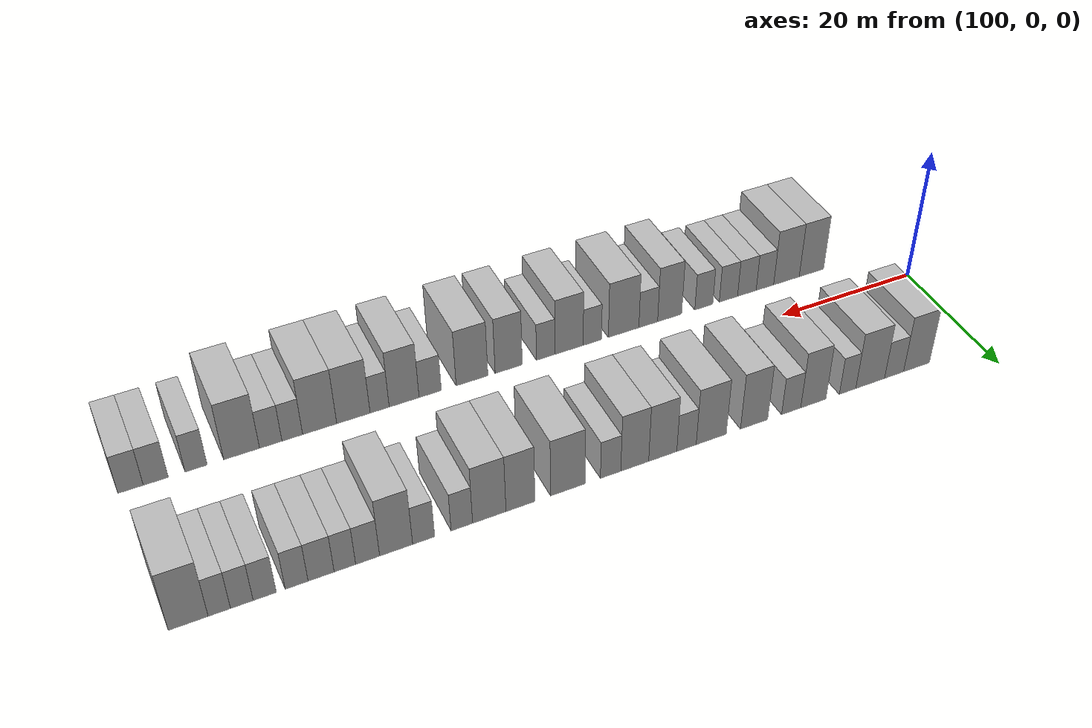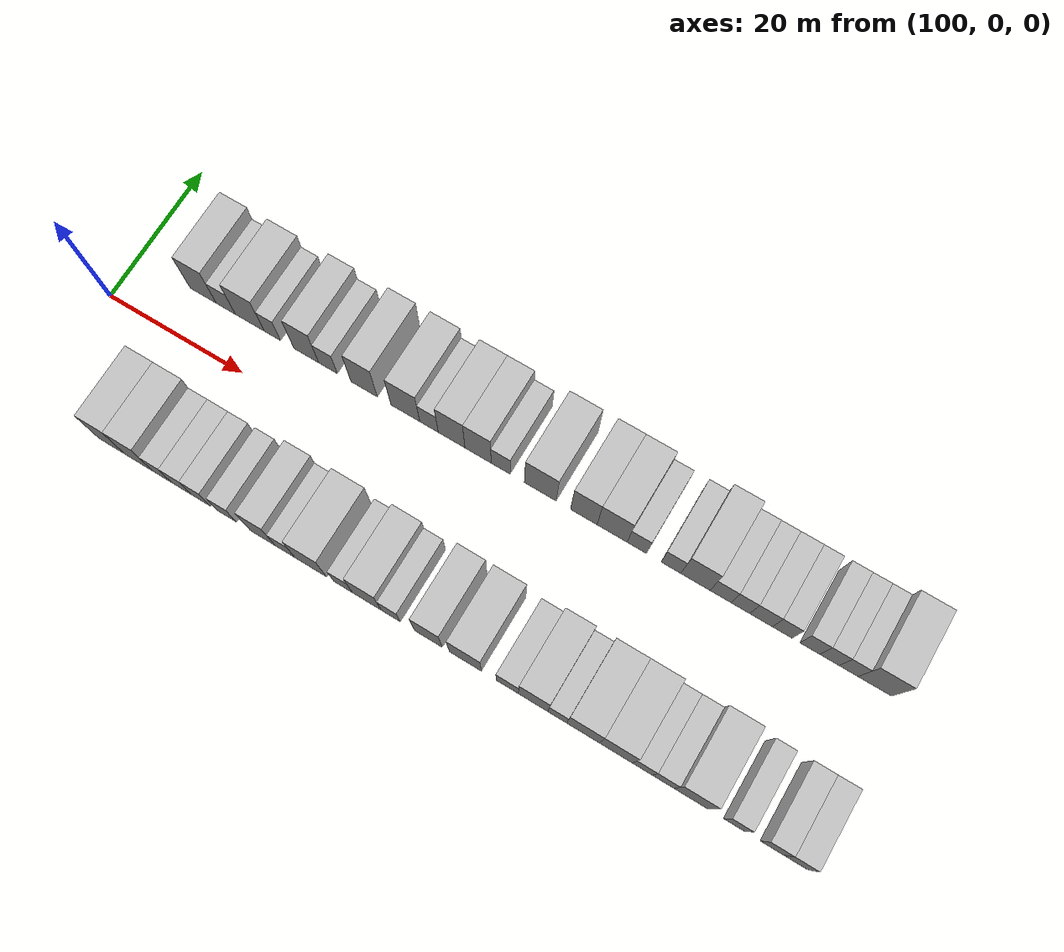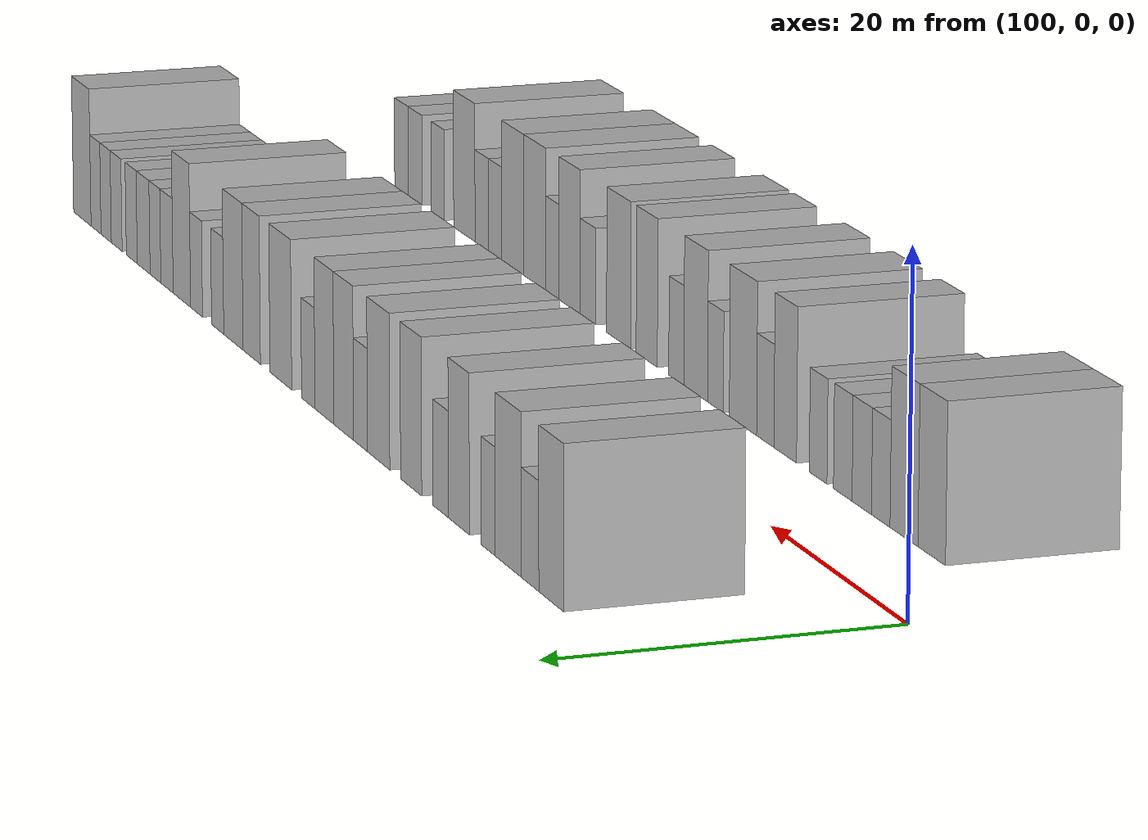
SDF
<sdf version="1.6">
 <world name="default">
  <model name="building_26">
   <static>1</static>
   <pose>109.9729 11.0000 0 0.000000 0.000000 1.570796</pose>
   <link name="link">
    <pose>0 0 4.50 0 0 0</pose>
    <collision name="collision"><geometry><box><size>10.0000 3.9864 9.0000</size></box></geometry></collision>
    <visual name="visual">
     <cast_shadows>0</cast_shadows>
     <geometry><box><size>10.0000 3.9864 9.0000</size></box></geometry>
     <material>
      <script>
       <uri>model://HANNAS_wall/materials/scripts</uri>
       <uri>model://HANNAS_wall/materials/textures</uri>
       <name>vrc/HANNAS_wall</name>
      </script>
     </material>
    </visual>
   </link>
  </model>
  <model name="building_27">
   <static>1</static>
   <pose>113.4090 11.0000 0 0.000000 0.000000 1.570796</pose>
   <link name="link">
    <pose>0 0 3.00 0 0 0</pose>
    <collision name="collision"><geometry><box><size>10.0000 2.8859 6.0000</size></box></geometry></collision>
    <visual name="visual">
     <cast_shadows>0</cast_shadows>
     <geometry><box><size>10.0000 2.8859 6.0000</size></box></geometry>
     <material>
      <script>
       <uri>model://HANNAS_wall/materials/scripts</uri>
       <uri>model://HANNAS_wall/materials/textures</uri>
       <name>vrc/HANNAS_wall</name>
      </script>
     </material>
    </visual>
   </link>
  </model>
  <model name="building_28">
   <static>1</static>
   <pose>117.0233 11.0000 0 0.000000 0.000000 1.570796</pose>
   <link name="link">
    <pose>0 0 4.50 0 0 0</pose>
    <collision name="collision"><geometry><box><size>10.0000 4.3427 9.0000</size></box></geometry></collision>
    <visual name="visual">
     <cast_shadows>0</cast_shadows>
     <geometry><box><size>10.0000 4.3427 9.0000</size></box></geometry>
     <material>
      <script>
       <uri>model://HANNAS_wall/materials/scripts</uri>
       <uri>model://HANNAS_wall/materials/textures</uri>
       <name>vrc/HANNAS_wall</name>
      </script>
     </material>
    </visual>
   </link>
  </model>
  <model name="building_29">
   <static>1</static>
   <pose>120.4155 11.0000 0 0.000000 0.000000 1.570796</pose>
   <link name="link">
    <pose>0 0 3.00 0 0 0</pose>
    <collision name="collision"><geometry><box><size>10.0000 2.4417 6.0000</size></box></geometry></collision>
    <visual name="visual">
     <cast_shadows>0</cast_shadows>
     <geometry><box><size>10.0000 2.4417 6.0000</size></box></geometry>
     <material>
      <script>
       <uri>model://HANNAS_wall/materials/scripts</uri>
       <uri>model://HANNAS_wall/materials/textures</uri>
       <name>vrc/HANNAS_wall</name>
      </script>
     </material>
    </visual>
   </link>
  </model>
  <model name="building_30">
   <static>1</static>
   <pose>125.4740 11.0000 0 0.000000 0.000000 1.570796</pose>
   <link name="link">
    <pose>0 0 4.50 0 0 0</pose>
    <collision name="collision"><geometry><box><size>10.0000 3.6753 9.0000</size></box></geometry></collision>
    <visual name="visual">
     <cast_shadows>0</cast_shadows>
     <geometry><box><size>10.0000 3.6753 9.0000</size></box></geometry>
     <material>
      <script>
       <uri>model://HANNAS_wall/materials/scripts</uri>
       <uri>model://HANNAS_wall/materials/textures</uri>
       <name>vrc/HANNAS_wall</name>
      </script>
     </material>
    </visual>
   </link>
  </model>
  <model name="building_31">
   <static>1</static>
   <pose>128.6920 11.0000 0 0.000000 0.000000 1.570796</pose>
   <link name="link">
    <pose>0 0 3.00 0 0 0</pose>
    <collision name="collision"><geometry><box><size>10.0000 2.7608 6.0000</size></box></geometry></collision>
    <visual name="visual">
     <cast_shadows>0</cast_shadows>
     <geometry><box><size>10.0000 2.7608 6.0000</size></box></geometry>
     <material>
      <script>
       <uri>model://HANNAS_wall/materials/scripts</uri>
       <uri>model://HANNAS_wall/materials/textures</uri>
       <name>vrc/HANNAS_wall</name>
      </script>
     </material>
    </visual>
   </link>
  </model>
  <model name="building_32">
   <static>1</static>
   <pose>133.9978 11.0000 0 0.000000 0.000000 1.570796</pose>
   <link name="link">
    <pose>0 0 4.50 0 0 0</pose>
    <collision name="collision"><geometry><box><size>10.0000 3.8509 9.0000</size></box></geometry></collision>
    <visual name="visual">
     <cast_shadows>0</cast_shadows>
     <geometry><box><size>10.0000 3.8509 9.0000</size></box></geometry>
     <material>
      <script>
       <uri>model://HANNAS_wall/materials/scripts</uri>
       <uri>model://HANNAS_wall/materials/textures</uri>
       <name>vrc/HANNAS_wall</name>
      </script>
     </material>
    </visual>
   </link>
  </model>
  <model name="building_33">
   <static>1</static>
   <pose>140.0102 11.0000 0 0.000000 0.000000 1.570796</pose>
   <link name="link">
    <pose>0 0 4.50 0 0 0</pose>
    <collision name="collision"><geometry><box><size>10.0000 4.1740 9.0000</size></box></geometry></collision>
    <visual name="visual">
     <cast_shadows>0</cast_shadows>
     <geometry><box><size>10.0000 4.1740 9.0000</size></box></geometry>
     <material>
      <script>
       <uri>model://HANNAS_wall/materials/scripts</uri>
       <uri>model://HANNAS_wall/materials/textures</uri>
       <name>vrc/HANNAS_wall</name>
      </script>
     </material>
    </visual>
   </link>
  </model>
  <model name="building_34">
   <static>1</static>
   <pose>143.4238 11.0000 0 0.000000 0.000000 1.570796</pose>
   <link name="link">
    <pose>0 0 3.00 0 0 0</pose>
    <collision name="collision"><geometry><box><size>10.0000 2.6531 6.0000</size></box></geometry></collision>
    <visual name="visual">
     <cast_shadows>0</cast_shadows>
     <geometry><box><size>10.0000 2.6531 6.0000</size></box></geometry>
     <material>
      <script>
       <uri>model://HANNAS_wall/materials/scripts</uri>
       <uri>model://HANNAS_wall/materials/textures</uri>
       <name>vrc/HANNAS_wall</name>
      </script>
     </material>
    </visual>
   </link>
  </model>
  <model name="building_35">
   <static>1</static>
   <pose>146.6559 11.0000 0 0.000000 0.000000 1.570796</pose>
   <link name="link">
    <pose>0 0 4.50 0 0 0</pose>
    <collision name="collision"><geometry><box><size>10.0000 3.8110 9.0000</size></box></geometry></collision>
    <visual name="visual">
     <cast_shadows>0</cast_shadows>
     <geometry><box><size>10.0000 3.8110 9.0000</size></box></geometry>
     <material>
      <script>
       <uri>model://HANNAS_wall/materials/scripts</uri>
       <uri>model://HANNAS_wall/materials/textures</uri>
       <name>vrc/HANNAS_wall</name>
      </script>
     </material>
    </visual>
   </link>
  </model>
  <model name="building_36">
   <static>1</static>
   <pose>150.4263 11.0000 0 0.000000 0.000000 1.570796</pose>
   <link name="link">
    <pose>0 0 4.50 0 0 0</pose>
    <collision name="collision"><geometry><box><size>10.0000 3.7297 9.0000</size></box></geometry></collision>
    <visual name="visual">
     <cast_shadows>0</cast_shadows>
     <geometry><box><size>10.0000 3.7297 9.0000</size></box></geometry>
     <material>
      <script>
       <uri>model://HANNAS_wall/materials/scripts</uri>
       <uri>model://HANNAS_wall/materials/textures</uri>
       <name>vrc/HANNAS_wall</name>
      </script>
     </material>
    </visual>
   </link>
  </model>
  <model name="building_37">
   <static>1</static>
   <pose>153.6339 11.0000 0 0.000000 0.000000 1.570796</pose>
   <link name="link">
    <pose>0 0 3.00 0 0 0</pose>
    <collision name="collision"><geometry><box><size>10.0000 2.6855 6.0000</size></box></geometry></collision>
    <visual name="visual">
     <cast_shadows>0</cast_shadows>
     <geometry><box><size>10.0000 2.6855 6.0000</size></box></geometry>
     <material>
      <script>
       <uri>model://HANNAS_wall/materials/scripts</uri>
       <uri>model://HANNAS_wall/materials/textures</uri>
       <name>vrc/HANNAS_wall</name>
      </script>
     </material>
    </visual>
   </link>
  </model>
  <model name="building_38">
   <static>1</static>
   <pose>159.2055 11.0000 0 0.000000 0.000000 1.570796</pose>
   <link name="link">
    <pose>0 0 4.50 0 0 0</pose>
    <collision name="collision"><geometry><box><size>10.0000 4.4578 9.0000</size></box></geometry></collision>
    <visual name="visual">
     <cast_shadows>0</cast_shadows>
     <geometry><box><size>10.0000 4.4578 9.0000</size></box></geometry>
     <material>
      <script>
       <uri>model://HANNAS_wall/materials/scripts</uri>
       <uri>model://HANNAS_wall/materials/textures</uri>
       <name>vrc/HANNAS_wall</name>
      </script>
     </material>
    </visual>
   </link>
  </model>
  <model name="building_39">
   <static>1</static>
   <pose>165.2655 11.0000 0 0.000000 0.000000 1.570796</pose>
   <link name="link">
    <pose>0 0 4.50 0 0 0</pose>
    <collision name="collision"><geometry><box><size>10.0000 3.6621 9.0000</size></box></geometry></collision>
    <visual name="visual">
     <cast_shadows>0</cast_shadows>
     <geometry><box><size>10.0000 3.6621 9.0000</size></box></geometry>
     <material>
      <script>
       <uri>model://HANNAS_wall/materials/scripts</uri>
       <uri>model://HANNAS_wall/materials/textures</uri>
       <name>vrc/HANNAS_wall</name>
      </script>
     </material>
    </visual>
   </link>
  </model>
  <model name="building_40">
   <static>1</static>
   <pose>169.1713 11.0000 0 0.000000 0.000000 1.570796</pose>
   <link name="link">
    <pose>0 0 4.50 0 0 0</pose>
    <collision name="collision"><geometry><box><size>10.0000 4.1495 9.0000</size></box></geometry></collision>
    <visual name="visual">
     <cast_shadows>0</cast_shadows>
     <geometry><box><size>10.0000 4.1495 9.0000</size></box></geometry>
     <material>
      <script>
       <uri>model://HANNAS_wall/materials/scripts</uri>
       <uri>model://HANNAS_wall/materials/textures</uri>
       <name>vrc/HANNAS_wall</name>
      </script>
     </material>
    </visual>
   </link>
  </model>
  <model name="building_41">
   <static>1</static>
   <pose>172.5689 11.0000 0 0.000000 0.000000 1.570796</pose>
   <link name="link">
    <pose>0 0 3.00 0 0 0</pose>
    <collision name="collision"><geometry><box><size>10.0000 2.6457 6.0000</size></box></geometry></collision>
    <visual name="visual">
     <cast_shadows>0</cast_shadows>
     <geometry><box><size>10.0000 2.6457 6.0000</size></box></geometry>
     <material>
      <script>
       <uri>model://HANNAS_wall/materials/scripts</uri>
       <uri>model://HANNAS_wall/materials/textures</uri>
       <name>vrc/HANNAS_wall</name>
      </script>
     </material>
    </visual>
   </link>
  </model>
  <model name="building_42">
   <static>1</static>
   <pose>177.2182 11.0000 0 0.000000 0.000000 1.570796</pose>
   <link name="link">
    <pose>0 0 3.00 0 0 0</pose>
    <collision name="collision"><geometry><box><size>10.0000 2.6530 6.0000</size></box></geometry></collision>
    <visual name="visual">
     <cast_shadows>0</cast_shadows>
     <geometry><box><size>10.0000 2.6530 6.0000</size></box></geometry>
     <material>
      <script>
       <uri>model://HANNAS_wall/materials/scripts</uri>
       <uri>model://HANNAS_wall/materials/textures</uri>
       <name>vrc/HANNAS_wall</name>
      </script>
     </material>
    </visual>
   </link>
  </model>
  <model name="building_43">
   <static>1</static>
   <pose>180.5146 11.0000 0 0.000000 0.000000 1.570796</pose>
   <link name="link">
    <pose>0 0 4.50 0 0 0</pose>
    <collision name="collision"><geometry><box><size>10.0000 3.9399 9.0000</size></box></geometry></collision>
    <visual name="visual">
     <cast_shadows>0</cast_shadows>
     <geometry><box><size>10.0000 3.9399 9.0000</size></box></geometry>
     <material>
      <script>
       <uri>model://HANNAS_wall/materials/scripts</uri>
       <uri>model://HANNAS_wall/materials/textures</uri>
       <name>vrc/HANNAS_wall</name>
      </script>
     </material>
    </visual>
   </link>
  </model>
  <model name="building_44">
   <static>1</static>
   <pose>183.8940 11.0000 0 0.000000 0.000000 1.570796</pose>
   <link name="link">
    <pose>0 0 3.00 0 0 0</pose>
    <collision name="collision"><geometry><box><size>10.0000 2.8188 6.0000</size></box></geometry></collision>
    <visual name="visual">
     <cast_shadows>0</cast_shadows>
     <geometry><box><size>10.0000 2.8188 6.0000</size></box></geometry>
     <material>
      <script>
       <uri>model://HANNAS_wall/materials/scripts</uri>
       <uri>model://HANNAS_wall/materials/textures</uri>
       <name>vrc/HANNAS_wall</name>
      </script>
     </material>
    </visual>
   </link>
  </model>
  <model name="building_45">
   <static>1</static>
   <pose>186.5556 11.0000 0 0.000000 0.000000 1.570796</pose>
   <link name="link">
    <pose>0 0 3.00 0 0 0</pose>
    <collision name="collision"><geometry><box><size>10.0000 2.5046 6.0000</size></box></geometry></collision>
    <visual name="visual">
     <cast_shadows>0</cast_shadows>
     <geometry><box><size>10.0000 2.5046 6.0000</size></box></geometry>
     <material>
      <script>
       <uri>model://HANNAS_wall/materials/scripts</uri>
       <uri>model://HANNAS_wall/materials/textures</uri>
       <name>vrc/HANNAS_wall</name>
      </script>
     </material>
    </visual>
   </link>
  </model>
  <model name="building_46">
   <static>1</static>
   <pose>189.3068 11.0000 0 0.000000 0.000000 1.570796</pose>
   <link name="link">
    <pose>0 0 3.00 0 0 0</pose>
    <collision name="collision"><geometry><box><size>10.0000 2.9978 6.0000</size></box></geometry></collision>
    <visual name="visual">
     <cast_shadows>0</cast_shadows>
     <geometry><box><size>10.0000 2.9978 6.0000</size></box></geometry>
     <material>
      <script>
       <uri>model://HANNAS_wall/materials/scripts</uri>
       <uri>model://HANNAS_wall/materials/textures</uri>
       <name>vrc/HANNAS_wall</name>
      </script>
     </material>
    </visual>
   </link>
  </model>
  <model name="building_47">
   <static>1</static>
   <pose>192.1091 11.0000 0 0.000000 0.000000 1.570796</pose>
   <link name="link">
    <pose>0 0 3.00 0 0 0</pose>
    <collision name="collision"><geometry><box><size>10.0000 2.6069 6.0000</size></box></geometry></collision>
    <visual name="visual">
     <cast_shadows>0</cast_shadows>
     <geometry><box><size>10.0000 2.6069 6.0000</size></box></geometry>
     <material>
      <script>
       <uri>model://HANNAS_wall/materials/scripts</uri>
       <uri>model://HANNAS_wall/materials/textures</uri>
       <name>vrc/HANNAS_wall</name>
      </script>
     </material>
    </visual>
   </link>
  </model>
  <model name="building_48">
   <static>1</static>
   <pose>195.7124 11.0000 0 0.000000 0.000000 1.570796</pose>
   <link name="link">
    <pose>0 0 3.00 0 0 0</pose>
    <collision name="collision"><geometry><box><size>10.0000 2.5996 6.0000</size></box></geometry></collision>
    <visual name="visual">
     <cast_shadows>0</cast_shadows>
     <geometry><box><size>10.0000 2.5996 6.0000</size></box></geometry>
     <material>
      <script>
       <uri>model://HANNAS_wall/materials/scripts</uri>
       <uri>model://HANNAS_wall/materials/textures</uri>
       <name>vrc/HANNAS_wall</name>
      </script>
     </material>
    </visual>
   </link>
  </model>
  <model name="building_49">
   <static>1</static>
   <pose>198.2674 11.0000 0 0.000000 0.000000 1.570796</pose>
   <link name="link">
    <pose>0 0 3.00 0 0 0</pose>
    <collision name="collision"><geometry><box><size>10.0000 2.5105 6.0000</size></box></geometry></collision>
    <visual name="visual">
     <cast_shadows>0</cast_shadows>
     <geometry><box><size>10.0000 2.5105 6.0000</size></box></geometry>
     <material>
      <script>
       <uri>model://HANNAS_wall/materials/scripts</uri>
       <uri>model://HANNAS_wall/materials/textures</uri>
       <name>vrc/HANNAS_wall</name>
      </script>
     </material>
    </visual>
   </link>
  </model>
  <model name="building_50">
   <static>1</static>
   <pose>200.7546 11.0000 0 0.000000 0.000000 1.570796</pose>
   <link name="link">
    <pose>0 0 3.00 0 0 0</pose>
    <collision name="collision"><geometry><box><size>10.0000 2.4640 6.0000</size></box></geometry></collision>
    <visual name="visual">
     <cast_shadows>0</cast_shadows>
     <geometry><box><size>10.0000 2.4640 6.0000</size></box></geometry>
     <material>
      <script>
       <uri>model://HANNAS_wall/materials/scripts</uri>
       <uri>model://HANNAS_wall/materials/textures</uri>
       <name>vrc/HANNAS_wall</name>
      </script>
     </material>
    </visual>
   </link>
  </model>
  <model name="building_51">
   <static>1</static>
   <pose>204.1535 11.0000 0 0.000000 0.000000 1.570796</pose>
   <link name="link">
    <pose>0 0 4.50 0 0 0</pose>
    <collision name="collision"><geometry><box><size>10.0000 4.3336 9.0000</size></box></geometry></collision>
    <visual name="visual">
     <cast_shadows>0</cast_shadows>
     <geometry><box><size>10.0000 4.3336 9.0000</size></box></geometry>
     <material>
      <script>
       <uri>model://HANNAS_wall/materials/scripts</uri>
       <uri>model://HANNAS_wall/materials/textures</uri>
       <name>vrc/HANNAS_wall</name>
      </script>
     </material>
    </visual>
   </link>
  </model>
  <model name="building_77">
   <static>1</static>
   <pose>111.7454 -11.0000 0 0.000000 0.000000 1.570796</pose>
   <link name="link">
    <pose>0 0 4.50 0 0 0</pose>
    <collision name="collision"><geometry><box><size>10.0000 3.9332 9.0000</size></box></geometry></collision>
    <visual name="visual">
     <cast_shadows>0</cast_shadows>
     <geometry><box><size>10.0000 3.9332 9.0000</size></box></geometry>
     <material>
      <script>
       <uri>model://HANNAS_wall/materials/scripts</uri>
       <uri>model://HANNAS_wall/materials/textures</uri>
       <name>vrc/HANNAS_wall</name>
      </script>
     </material>
    </visual>
   </link>
  </model>
  <model name="building_78">
   <static>1</static>
   <pose>115.7536 -11.0000 0 0.000000 0.000000 1.570796</pose>
   <link name="link">
    <pose>0 0 4.50 0 0 0</pose>
    <collision name="collision"><geometry><box><size>10.0000 4.0831 9.0000</size></box></geometry></collision>
    <visual name="visual">
     <cast_shadows>0</cast_shadows>
     <geometry><box><size>10.0000 4.0831 9.0000</size></box></geometry>
     <material>
      <script>
       <uri>model://HANNAS_wall/materials/scripts</uri>
       <uri>model://HANNAS_wall/materials/textures</uri>
       <name>vrc/HANNAS_wall</name>
      </script>
     </material>
    </visual>
   </link>
  </model>
  <model name="building_79">
   <static>1</static>
   <pose>119.1729 -11.0000 0 0.000000 0.000000 1.570796</pose>
   <link name="link">
    <pose>0 0 3.00 0 0 0</pose>
    <collision name="collision"><geometry><box><size>10.0000 2.7557 6.0000</size></box></geometry></collision>
    <visual name="visual">
     <cast_shadows>0</cast_shadows>
     <geometry><box><size>10.0000 2.7557 6.0000</size></box></geometry>
     <material>
      <script>
       <uri>model://HANNAS_wall/materials/scripts</uri>
       <uri>model://HANNAS_wall/materials/textures</uri>
       <name>vrc/HANNAS_wall</name>
      </script>
     </material>
    </visual>
   </link>
  </model>
  <model name="building_80">
   <static>1</static>
   <pose>122.0045 -11.0000 0 0.000000 0.000000 1.570796</pose>
   <link name="link">
    <pose>0 0 3.00 0 0 0</pose>
    <collision name="collision"><geometry><box><size>10.0000 2.9076 6.0000</size></box></geometry></collision>
    <visual name="visual">
     <cast_shadows>0</cast_shadows>
     <geometry><box><size>10.0000 2.9076 6.0000</size></box></geometry>
     <material>
      <script>
       <uri>model://HANNAS_wall/materials/scripts</uri>
       <uri>model://HANNAS_wall/materials/textures</uri>
       <name>vrc/HANNAS_wall</name>
      </script>
     </material>
    </visual>
   </link>
  </model>
  <model name="building_81">
   <static>1</static>
   <pose>124.8763 -11.0000 0 0.000000 0.000000 1.570796</pose>
   <link name="link">
    <pose>0 0 3.00 0 0 0</pose>
    <collision name="collision"><geometry><box><size>10.0000 2.8359 6.0000</size></box></geometry></collision>
    <visual name="visual">
     <cast_shadows>0</cast_shadows>
     <geometry><box><size>10.0000 2.8359 6.0000</size></box></geometry>
     <material>
      <script>
       <uri>model://HANNAS_wall/materials/scripts</uri>
       <uri>model://HANNAS_wall/materials/textures</uri>
       <name>vrc/HANNAS_wall</name>
      </script>
     </material>
    </visual>
   </link>
  </model>
  <model name="building_82">
   <static>1</static>
   <pose>128.6681 -11.0000 0 0.000000 0.000000 1.570796</pose>
   <link name="link">
    <pose>0 0 3.00 0 0 0</pose>
    <collision name="collision"><geometry><box><size>10.0000 2.7479 6.0000</size></box></geometry></collision>
    <visual name="visual">
     <cast_shadows>0</cast_shadows>
     <geometry><box><size>10.0000 2.7479 6.0000</size></box></geometry>
     <material>
      <script>
       <uri>model://HANNAS_wall/materials/scripts</uri>
       <uri>model://HANNAS_wall/materials/textures</uri>
       <name>vrc/HANNAS_wall</name>
      </script>
     </material>
    </visual>
   </link>
  </model>
  <model name="building_83">
   <static>1</static>
   <pose>133.8481 -11.0000 0 0.000000 0.000000 1.570796</pose>
   <link name="link">
    <pose>0 0 4.50 0 0 0</pose>
    <collision name="collision"><geometry><box><size>10.0000 3.6120 9.0000</size></box></geometry></collision>
    <visual name="visual">
     <cast_shadows>0</cast_shadows>
     <geometry><box><size>10.0000 3.6120 9.0000</size></box></geometry>
     <material>
      <script>
       <uri>model://HANNAS_wall/materials/scripts</uri>
       <uri>model://HANNAS_wall/materials/textures</uri>
       <name>vrc/HANNAS_wall</name>
      </script>
     </material>
    </visual>
   </link>
  </model>
  <model name="building_84">
   <static>1</static>
   <pose>137.0500 -11.0000 0 0.000000 0.000000 1.570796</pose>
   <link name="link">
    <pose>0 0 3.00 0 0 0</pose>
    <collision name="collision"><geometry><box><size>10.0000 2.7918 6.0000</size></box></geometry></collision>
    <visual name="visual">
     <cast_shadows>0</cast_shadows>
     <geometry><box><size>10.0000 2.7918 6.0000</size></box></geometry>
     <material>
      <script>
       <uri>model://HANNAS_wall/materials/scripts</uri>
       <uri>model://HANNAS_wall/materials/textures</uri>
       <name>vrc/HANNAS_wall</name>
      </script>
     </material>
    </visual>
   </link>
  </model>
  <model name="building_85">
   <static>1</static>
   <pose>140.6866 -11.0000 0 0.000000 0.000000 1.570796</pose>
   <link name="link">
    <pose>0 0 4.50 0 0 0</pose>
    <collision name="collision"><geometry><box><size>10.0000 4.4813 9.0000</size></box></geometry></collision>
    <visual name="visual">
     <cast_shadows>0</cast_shadows>
     <geometry><box><size>10.0000 4.4813 9.0000</size></box></geometry>
     <material>
      <script>
       <uri>model://HANNAS_wall/materials/scripts</uri>
       <uri>model://HANNAS_wall/materials/textures</uri>
       <name>vrc/HANNAS_wall</name>
      </script>
     </material>
    </visual>
   </link>
  </model>
  <model name="building_86">
   <static>1</static>
   <pose>145.2495 -11.0000 0 0.000000 0.000000 1.570796</pose>
   <link name="link">
    <pose>0 0 3.00 0 0 0</pose>
    <collision name="collision"><geometry><box><size>10.0000 2.6444 6.0000</size></box></geometry></collision>
    <visual name="visual">
     <cast_shadows>0</cast_shadows>
     <geometry><box><size>10.0000 2.6444 6.0000</size></box></geometry>
     <material>
      <script>
       <uri>model://HANNAS_wall/materials/scripts</uri>
       <uri>model://HANNAS_wall/materials/textures</uri>
       <name>vrc/HANNAS_wall</name>
      </script>
     </material>
    </visual>
   </link>
  </model>
  <model name="building_87">
   <static>1</static>
   <pose>148.5926 -11.0000 0 0.000000 0.000000 1.570796</pose>
   <link name="link">
    <pose>0 0 4.50 0 0 0</pose>
    <collision name="collision"><geometry><box><size>10.0000 4.0419 9.0000</size></box></geometry></collision>
    <visual name="visual">
     <cast_shadows>0</cast_shadows>
     <geometry><box><size>10.0000 4.0419 9.0000</size></box></geometry>
     <material>
      <script>
       <uri>model://HANNAS_wall/materials/scripts</uri>
       <uri>model://HANNAS_wall/materials/textures</uri>
       <name>vrc/HANNAS_wall</name>
      </script>
     </material>
    </visual>
   </link>
  </model>
  <model name="building_88">
   <static>1</static>
   <pose>151.9230 -11.0000 0 0.000000 0.000000 1.570796</pose>
   <link name="link">
    <pose>0 0 3.00 0 0 0</pose>
    <collision name="collision"><geometry><box><size>10.0000 2.6189 6.0000</size></box></geometry></collision>
    <visual name="visual">
     <cast_shadows>0</cast_shadows>
     <geometry><box><size>10.0000 2.6189 6.0000</size></box></geometry>
     <material>
      <script>
       <uri>model://HANNAS_wall/materials/scripts</uri>
       <uri>model://HANNAS_wall/materials/textures</uri>
       <name>vrc/HANNAS_wall</name>
      </script>
     </material>
    </visual>
   </link>
  </model>
  <model name="building_89">
   <static>1</static>
   <pose>157.1160 -11.0000 0 0.000000 0.000000 1.570796</pose>
   <link name="link">
    <pose>0 0 4.50 0 0 0</pose>
    <collision name="collision"><geometry><box><size>10.0000 3.7672 9.0000</size></box></geometry></collision>
    <visual name="visual">
     <cast_shadows>0</cast_shadows>
     <geometry><box><size>10.0000 3.7672 9.0000</size></box></geometry>
     <material>
      <script>
       <uri>model://HANNAS_wall/materials/scripts</uri>
       <uri>model://HANNAS_wall/materials/textures</uri>
       <name>vrc/HANNAS_wall</name>
      </script>
     </material>
    </visual>
   </link>
  </model>
  <model name="building_90">
   <static>1</static>
   <pose>162.1713 -11.0000 0 0.000000 0.000000 1.570796</pose>
   <link name="link">
    <pose>0 0 4.50 0 0 0</pose>
    <collision name="collision"><geometry><box><size>10.0000 4.3433 9.0000</size></box></geometry></collision>
    <visual name="visual">
     <cast_shadows>0</cast_shadows>
     <geometry><box><size>10.0000 4.3433 9.0000</size></box></geometry>
     <material>
      <script>
       <uri>model://HANNAS_wall/materials/scripts</uri>
       <uri>model://HANNAS_wall/materials/textures</uri>
       <name>vrc/HANNAS_wall</name>
      </script>
     </material>
    </visual>
   </link>
  </model>
  <model name="building_91">
   <static>1</static>
   <pose>167.8304 -11.0000 0 0.000000 0.000000 1.570796</pose>
   <link name="link">
    <pose>0 0 3.00 0 0 0</pose>
    <collision name="collision"><geometry><box><size>10.0000 2.9750 6.0000</size></box></geometry></collision>
    <visual name="visual">
     <cast_shadows>0</cast_shadows>
     <geometry><box><size>10.0000 2.9750 6.0000</size></box></geometry>
     <material>
      <script>
       <uri>model://HANNAS_wall/materials/scripts</uri>
       <uri>model://HANNAS_wall/materials/textures</uri>
       <name>vrc/HANNAS_wall</name>
      </script>
     </material>
    </visual>
   </link>
  </model>
  <model name="building_92">
   <static>1</static>
   <pose>171.2970 -11.0000 0 0.000000 0.000000 1.570796</pose>
   <link name="link">
    <pose>0 0 4.50 0 0 0</pose>
    <collision name="collision"><geometry><box><size>10.0000 3.9580 9.0000</size></box></geometry></collision>
    <visual name="visual">
     <cast_shadows>0</cast_shadows>
     <geometry><box><size>10.0000 3.9580 9.0000</size></box></geometry>
     <material>
      <script>
       <uri>model://HANNAS_wall/materials/scripts</uri>
       <uri>model://HANNAS_wall/materials/textures</uri>
       <name>vrc/HANNAS_wall</name>
      </script>
     </material>
    </visual>
   </link>
  </model>
  <model name="building_93">
   <static>1</static>
   <pose>174.5248 -11.0000 0 0.000000 0.000000 1.570796</pose>
   <link name="link">
    <pose>0 0 3.00 0 0 0</pose>
    <collision name="collision"><geometry><box><size>10.0000 2.4977 6.0000</size></box></geometry></collision>
    <visual name="visual">
     <cast_shadows>0</cast_shadows>
     <geometry><box><size>10.0000 2.4977 6.0000</size></box></geometry>
     <material>
      <script>
       <uri>model://HANNAS_wall/materials/scripts</uri>
       <uri>model://HANNAS_wall/materials/textures</uri>
       <name>vrc/HANNAS_wall</name>
      </script>
     </material>
    </visual>
   </link>
  </model>
  <model name="building_94">
   <static>1</static>
   <pose>177.9291 -11.0000 0 0.000000 0.000000 1.570796</pose>
   <link name="link">
    <pose>0 0 4.50 0 0 0</pose>
    <collision name="collision"><geometry><box><size>10.0000 4.3109 9.0000</size></box></geometry></collision>
    <visual name="visual">
     <cast_shadows>0</cast_shadows>
     <geometry><box><size>10.0000 4.3109 9.0000</size></box></geometry>
     <material>
      <script>
       <uri>model://HANNAS_wall/materials/scripts</uri>
       <uri>model://HANNAS_wall/materials/textures</uri>
       <name>vrc/HANNAS_wall</name>
      </script>
     </material>
    </visual>
   </link>
  </model>
  <model name="building_95">
   <static>1</static>
   <pose>182.2552 -11.0000 0 0.000000 0.000000 1.570796</pose>
   <link name="link">
    <pose>0 0 4.50 0 0 0</pose>
    <collision name="collision"><geometry><box><size>10.0000 4.3412 9.0000</size></box></geometry></collision>
    <visual name="visual">
     <cast_shadows>0</cast_shadows>
     <geometry><box><size>10.0000 4.3412 9.0000</size></box></geometry>
     <material>
      <script>
       <uri>model://HANNAS_wall/materials/scripts</uri>
       <uri>model://HANNAS_wall/materials/textures</uri>
       <name>vrc/HANNAS_wall</name>
      </script>
     </material>
    </visual>
   </link>
  </model>
  <model name="building_96">
   <static>1</static>
   <pose>185.7241 -11.0000 0 0.000000 0.000000 1.570796</pose>
   <link name="link">
    <pose>0 0 3.00 0 0 0</pose>
    <collision name="collision"><geometry><box><size>10.0000 2.5967 6.0000</size></box></geometry></collision>
    <visual name="visual">
     <cast_shadows>0</cast_shadows>
     <geometry><box><size>10.0000 2.5967 6.0000</size></box></geometry>
     <material>
      <script>
       <uri>model://HANNAS_wall/materials/scripts</uri>
       <uri>model://HANNAS_wall/materials/textures</uri>
       <name>vrc/HANNAS_wall</name>
      </script>
     </material>
    </visual>
   </link>
  </model>
  <model name="building_97">
   <static>1</static>
   <pose>188.4174 -11.0000 0 0.000000 0.000000 1.570796</pose>
   <link name="link">
    <pose>0 0 3.00 0 0 0</pose>
    <collision name="collision"><geometry><box><size>10.0000 2.7899 6.0000</size></box></geometry></collision>
    <visual name="visual">
     <cast_shadows>0</cast_shadows>
     <geometry><box><size>10.0000 2.7899 6.0000</size></box></geometry>
     <material>
      <script>
       <uri>model://HANNAS_wall/materials/scripts</uri>
       <uri>model://HANNAS_wall/materials/textures</uri>
       <name>vrc/HANNAS_wall</name>
      </script>
     </material>
    </visual>
   </link>
  </model>
  <model name="building_98">
   <static>1</static>
   <pose>192.0155 -11.0000 0 0.000000 0.000000 1.570796</pose>
   <link name="link">
    <pose>0 0 4.50 0 0 0</pose>
    <collision name="collision"><geometry><box><size>10.0000 4.4063 9.0000</size></box></geometry></collision>
    <visual name="visual">
     <cast_shadows>0</cast_shadows>
     <geometry><box><size>10.0000 4.4063 9.0000</size></box></geometry>
     <material>
      <script>
       <uri>model://HANNAS_wall/materials/scripts</uri>
       <uri>model://HANNAS_wall/materials/textures</uri>
       <name>vrc/HANNAS_wall</name>
      </script>
     </material>
    </visual>
   </link>
  </model>
  <model name="building_99">
   <static>1</static>
   <pose>197.5537 -11.0000 0 0.000000 0.000000 1.570796</pose>
   <link name="link">
    <pose>0 0 3.00 0 0 0</pose>
    <collision name="collision"><geometry><box><size>10.0000 2.6701 6.0000</size></box></geometry></collision>
    <visual name="visual">
     <cast_shadows>0</cast_shadows>
     <geometry><box><size>10.0000 2.6701 6.0000</size></box></geometry>
     <material>
      <script>
       <uri>model://HANNAS_wall/materials/scripts</uri>
       <uri>model://HANNAS_wall/materials/textures</uri>
       <name>vrc/HANNAS_wall</name>
      </script>
     </material>
    </visual>
   </link>
  </model>
  <model name="building_100">
   <static>1</static>
   <pose>202.3677 -11.0000 0 0.000000 0.000000 1.570796</pose>
   <link name="link">
    <pose>0 0 3.00 0 0 0</pose>
    <collision name="collision"><geometry><box><size>10.0000 2.9578 6.0000</size></box></geometry></collision>
    <visual name="visual">
     <cast_shadows>0</cast_shadows>
     <geometry><box><size>10.0000 2.9578 6.0000</size></box></geometry>
     <material>
      <script>
       <uri>model://HANNAS_wall/materials/scripts</uri>
       <uri>model://HANNAS_wall/materials/textures</uri>
       <name>vrc/HANNAS_wall</name>
      </script>
     </material>
    </visual>
   </link>
  </model>
  <model name="building_101">
   <static>1</static>
   <pose>205.3370 -11.0000 0 0.000000 0.000000 1.570796</pose>
   <link name="link">
    <pose>0 0 3.00 0 0 0</pose>
    <collision name="collision"><geometry><box><size>10.0000 2.9809 6.0000</size></box></geometry></collision>
    <visual name="visual">
     <cast_shadows>0</cast_shadows>
     <geometry><box><size>10.0000 2.9809 6.0000</size></box></geometry>
     <material>
      <script>
       <uri>model://HANNAS_wall/materials/scripts</uri>
       <uri>model://HANNAS_wall/materials/textures</uri>
       <name>vrc/HANNAS_wall</name>
      </script>
     </material>
    </visual>
   </link>
  </model>
 </world>
</sdf>
